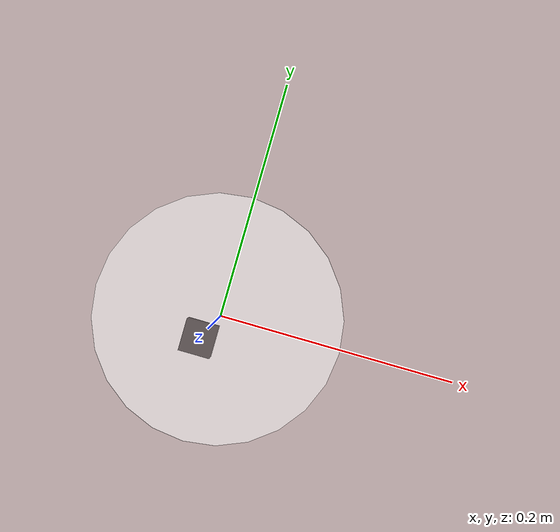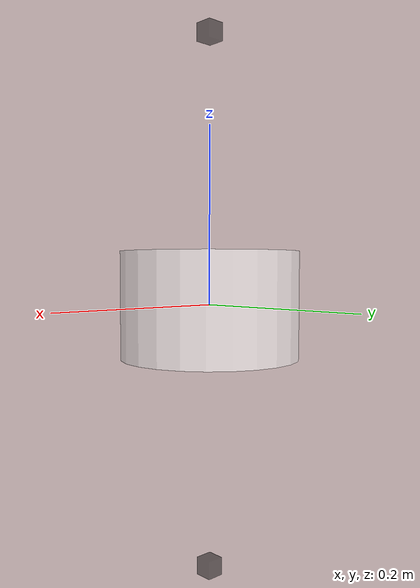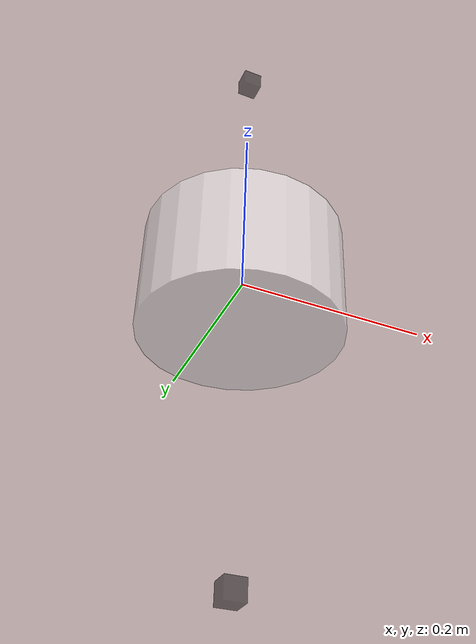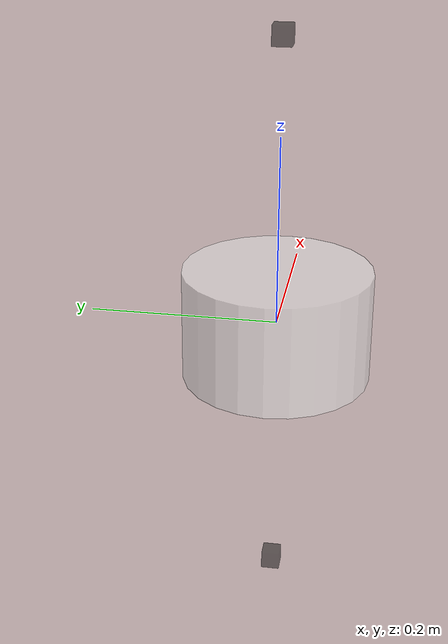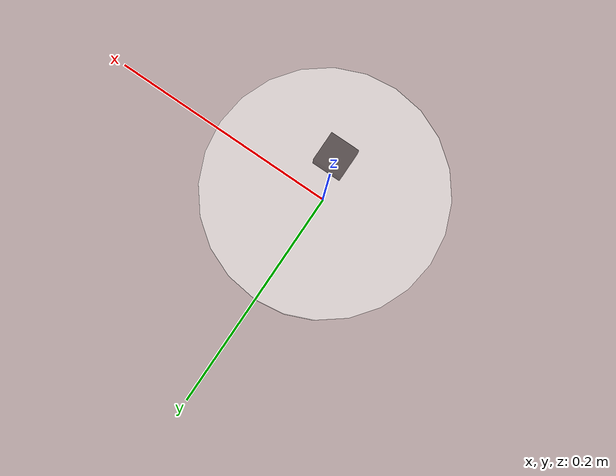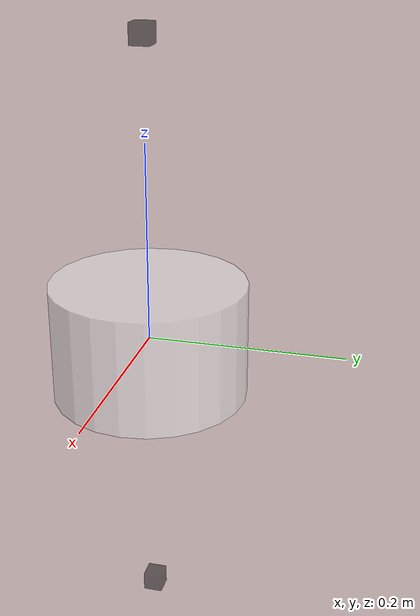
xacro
<?xml version="1.0"?>
<robot xmlns:xacro="http://www.ros.org/wiki/xacro" name="first_robot">
    <xacro:macro name = "base_link" params = "length radius">
        <!-- 机器人的身体部分 -->
        <link name="base_link">
            <visual>
                <origin xyz="0 0 0" rpy="0 0 0"/>
                <geometry>
                    <cylinder radius="${radius}" length="${length}"/>
                </geometry>

                <material name="white" >
                    <color rgba="1.0 1.0 1.0 0.5"/>
                </material>

            </visual>
        </link>
    </xacro:macro>

    <xacro:macro name = "imu_link" params = "imu_name xyz">
        <link name="${imu_name}_link">
            <visual>
                <origin xyz="0 0 0" rpy="0 0 0"/>
                <geometry>
                    <box size="0.02 0.02 0.02"/>
                </geometry>

                <material name="black">
                    <color rgba="0.0 0.0 0.0 0.5"/>
                </material>

            </visual>
        </link>

        <!-- 机器人关节 -->
        <joint name="${imu_name}_joint" type="fixed">
            <parent link="base_link"/>
            <child link="${imu_name}_link"/>
            <origin xyz="${xyz}" rpy="0 0 0"/>

        </joint>
    </xacro:macro>

    <xacro:base_link length="0.12" radius="0.1"/>
    <xacro:imu_link imu_name="imu_up" xyz="0 0 0.3"/>
    <xacro:imu_link imu_name="imu_down" xyz="0 0 -0.3"/>

</robot>

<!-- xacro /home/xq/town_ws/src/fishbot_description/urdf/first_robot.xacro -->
<!-- ros2 launch fishbot_description display_robot.launch.py model:=/home/xq/town_ws/src/fishbot_description/urdf/first_robot.xacro -->
